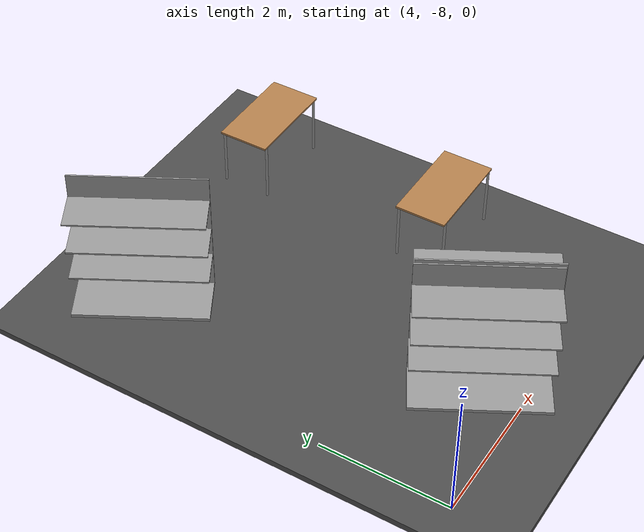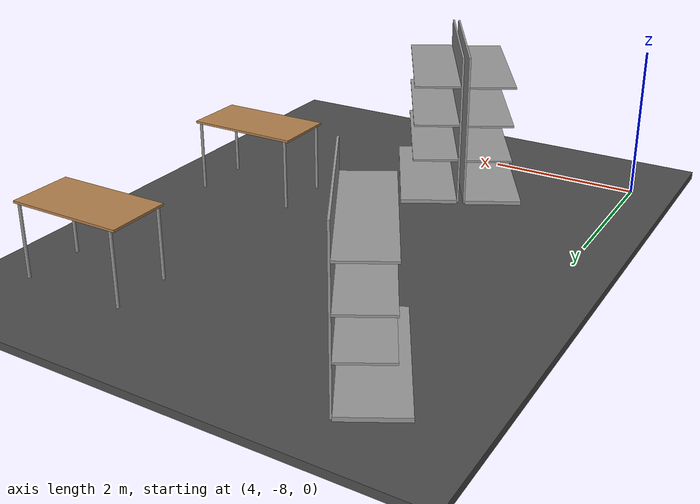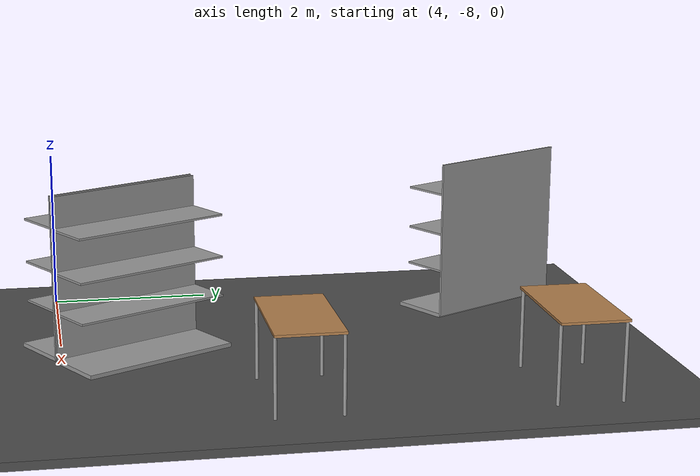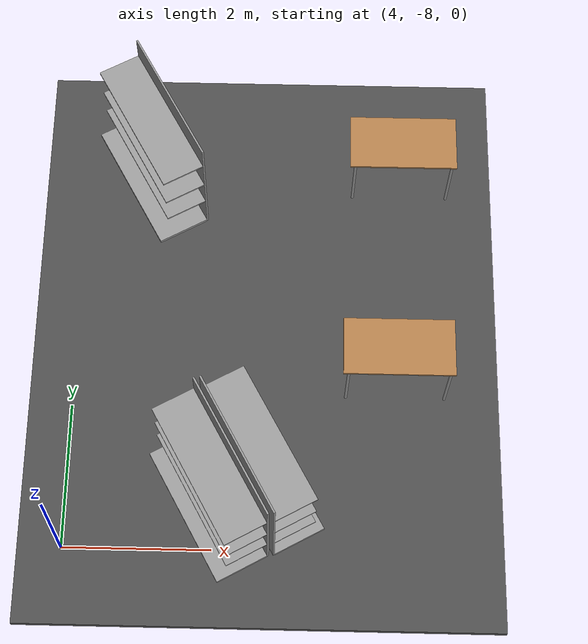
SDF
<sdf version="1.6">
 <world name="default">
  <model name="ground_plane">
   <static>1</static>
   <link name="link">
    <collision name="collision">
     <geometry><plane><normal>0 0 1</normal><size>100 100</size></plane></geometry>
     <surface>
      <contact><collide_bitmask>65535</collide_bitmask></contact>
      <friction><ode><mu>100</mu><mu2>50</mu2></ode></friction>
     </surface>
    </collision>
    <visual name="visual">
     <cast_shadows>0</cast_shadows>
     <geometry><plane><normal>0 0 1</normal><size>100 100</size></plane></geometry>
     <material>
      <script><uri>file://media/materials/scripts/gazebo.material</uri><name>Gazebo/Grey</name></script>
     </material>
    </visual>
   </link>
  </model>
  <model name="asphalt_plane">
   <static>1</static>
   <link name="link">
    <collision name="collision"><geometry><box><size>20 23.3157 0.1</size></box></geometry></collision>
    <visual name="visual">
     <cast_shadows>0</cast_shadows>
     <geometry><box><size>20 23.3157 0.1</size></box></geometry>
     <material>
      <script>
       <uri>model://asphalt_plane/materials/scripts</uri>
       <uri>model://asphalt_plane/materials/textures</uri>
       <name>vrc/asphalt</name>
      </script>
     </material>
    </visual>
   </link>
   <pose>0.082168 -0.989597 0 0 -0 0</pose>
  </model>
  <model name="LongShelf_1_clone_clone_0">
   <link name="link_0">
    <inertial>
     <mass>0.38468</mass>
     <inertia>
      <ixx>0.0321196</ixx>
      <ixy>0</ixy>
      <ixz>0</ixz>
      <iyy>2.41752</iyy>
      <iyz>0</iyz>
      <izz>2.44951</izz>
     </inertia>
    </inertial>
    <pose>0.01298 0.384233 -0.994649 0 -0 0</pose>
    <visual name="visual">
     <geometry><box><size>2 0.75 0.05</size></box></geometry>
     <material>
      <lighting>1</lighting>
      <script><uri>file://media/materials/scripts/gazebo.material</uri><name>Gazebo/Grey</name></script>
      <shader type="vertex"><normal_map>__default__</normal_map></shader>
      <ambient>0.3 0.3 0.3 1</ambient>
      <diffuse>0.7 0.7 0.7 1</diffuse>
      <specular>0.01 0.01 0.01 1</specular>
      <emissive>0 0 0 1</emissive>
     </material>
    </visual>
    <collision name="collision">
     <geometry><box><size>2 0.75 0.05</size></box></geometry>
     <surface>
      <friction>
       <ode><mu>1</mu><mu2>1</mu2><fdir1>0 0 0</fdir1><slip1>0</slip1><slip2>0</slip2></ode>
       <torsional>
        <coefficient>1</coefficient>
        <patch_radius>0</patch_radius>
        <surface_radius>0</surface_radius>
        <use_patch_radius>1</use_patch_radius>
        <ode><slip>0</slip></ode>
       </torsional>
      </friction>
      <bounce><restitution_coefficient>0</restitution_coefficient><threshold>1e+06</threshold></bounce>
      <contact>
       <collide_without_contact>0</collide_without_contact>
       <collide_without_contact_bitmask>1</collide_without_contact_bitmask>
       <collide_bitmask>1</collide_bitmask>
       <ode>
        <soft_cfm>0</soft_cfm>
        <soft_erp>0.2</soft_erp>
        <kp>1e+13</kp>
        <kd>1</kd>
        <max_vel>0.01</max_vel>
        <min_depth>0</min_depth>
       </ode>
       <bullet>
        <split_impulse>1</split_impulse>
        <split_impulse_penetration_threshold>-0.01</split_impulse_penetration_threshold>
        <soft_cfm>0</soft_cfm>
        <soft_erp>0.2</soft_erp>
        <kp>1e+13</kp>
        <kd>1</kd>
       </bullet>
      </contact>
     </surface>
    </collision>
   </link>
   <link name="link_1">
    <inertial>
     <mass>0.748605</mass>
     <inertia><ixx>0.445095</ixx><ixy>0</ixy><ixz>0</ixz><iyy>5.12268</iyy><iyz>0</iyz><izz>4.67771</izz></inertia>
    </inertial>
    <pose>0.009966 -0.000866 0 0 -0 0</pose>
    <visual name="visual">
     <geometry><box><size>2 0.025 2</size></box></geometry>
     <material>
      <lighting>1</lighting>
      <script><uri>file://media/materials/scripts/gazebo.material</uri><name>Gazebo/Grey</name></script>
      <shader type="vertex"><normal_map>__default__</normal_map></shader>
      <ambient>0.3 0.3 0.3 1</ambient>
      <diffuse>0.7 0.7 0.7 1</diffuse>
      <specular>0.01 0.01 0.01 1</specular>
      <emissive>0 0 0 1</emissive>
     </material>
    </visual>
    <collision name="collision">
     <geometry><box><size>2 0.025 2</size></box></geometry>
     <surface>
      <friction>
       <ode><mu>1</mu><mu2>1</mu2><fdir1>0 0 0</fdir1><slip1>0</slip1><slip2>0</slip2></ode>
       <torsional>
        <coefficient>1</coefficient>
        <patch_radius>0</patch_radius>
        <surface_radius>0</surface_radius>
        <use_patch_radius>1</use_patch_radius>
        <ode><slip>0</slip></ode>
       </torsional>
      </friction>
      <bounce><restitution_coefficient>0</restitution_coefficient><threshold>1e+06</threshold></bounce>
      <contact>
       <collide_without_contact>0</collide_without_contact>
       <collide_without_contact_bitmask>1</collide_without_contact_bitmask>
       <collide_bitmask>1</collide_bitmask>
       <ode>
        <soft_cfm>0</soft_cfm>
        <soft_erp>0.2</soft_erp>
        <kp>1e+13</kp>
        <kd>1</kd>
        <max_vel>0.01</max_vel>
        <min_depth>0</min_depth>
       </ode>
       <bullet>
        <split_impulse>1</split_impulse>
        <split_impulse_penetration_threshold>-0.01</split_impulse_penetration_threshold>
        <soft_cfm>0</soft_cfm>
        <soft_erp>0.2</soft_erp>
        <kp>1e+13</kp>
        <kd>1</kd>
       </bullet>
      </contact>
     </surface>
    </collision>
   </link>
   <link name="link_2">
    <inertial>
     <mass>0.0597214</mass>
     <inertia>
      <ixx>0.00742007</ixx>
      <ixy>0</ixy>
      <ixz>0</ixz>
      <iyy>0.00498871</iyy>
      <iyz>0</iyz>
      <izz>0.0123849</izz>
     </inertia>
    </inertial>
    <pose>0.010881 0.305507 0.086252 0 -0 0</pose>
    <visual name="visual">
     <geometry><box><size>2 0.6 0.025</size></box></geometry>
     <material>
      <lighting>1</lighting>
      <script><uri>file://media/materials/scripts/gazebo.material</uri><name>Gazebo/Grey</name></script>
      <shader type="vertex"><normal_map>__default__</normal_map></shader>
      <ambient>0.3 0.3 0.3 1</ambient>
      <diffuse>0.7 0.7 0.7 1</diffuse>
      <specular>0.01 0.01 0.01 1</specular>
      <emissive>0 0 0 1</emissive>
     </material>
    </visual>
    <collision name="collision">
     <geometry><box><size>2 0.600001 0.025</size></box></geometry>
     <surface>
      <friction>
       <ode><mu>1</mu><mu2>1</mu2><fdir1>0 0 0</fdir1><slip1>0</slip1><slip2>0</slip2></ode>
       <torsional>
        <coefficient>1</coefficient>
        <patch_radius>0</patch_radius>
        <surface_radius>0</surface_radius>
        <use_patch_radius>1</use_patch_radius>
        <ode><slip>0</slip></ode>
       </torsional>
      </friction>
      <bounce><restitution_coefficient>0</restitution_coefficient><threshold>1e+06</threshold></bounce>
      <contact>
       <collide_without_contact>0</collide_without_contact>
       <collide_without_contact_bitmask>1</collide_without_contact_bitmask>
       <collide_bitmask>1</collide_bitmask>
       <ode>
        <soft_cfm>0</soft_cfm>
        <soft_erp>0.2</soft_erp>
        <kp>1e+13</kp>
        <kd>1</kd>
        <max_vel>0.01</max_vel>
        <min_depth>0</min_depth>
       </ode>
       <bullet>
        <split_impulse>1</split_impulse>
        <split_impulse_penetration_threshold>-0.01</split_impulse_penetration_threshold>
        <soft_cfm>0</soft_cfm>
        <soft_erp>0.2</soft_erp>
        <kp>1e+13</kp>
        <kd>1</kd>
       </bullet>
      </contact>
     </surface>
    </collision>
   </link>
   <link name="link_2_clone">
    <inertial>
     <mass>0.0597214</mass>
     <inertia>
      <ixx>0.00742007</ixx>
      <ixy>0</ixy>
      <ixz>0</ixz>
      <iyy>0.00498871</iyy>
      <iyz>0</iyz>
      <izz>0.0123849</izz>
     </inertia>
    </inertial>
    <pose>0.012798 0.30891 0.609885 0 -0 0</pose>
    <visual name="visual">
     <geometry><box><size>2 0.6 0.025</size></box></geometry>
     <material>
      <lighting>1</lighting>
      <script><uri>file://media/materials/scripts/gazebo.material</uri><name>Gazebo/Grey</name></script>
      <shader type="vertex"><normal_map>__default__</normal_map></shader>
      <ambient>0.3 0.3 0.3 1</ambient>
      <diffuse>0.7 0.7 0.7 1</diffuse>
      <specular>0.01 0.01 0.01 1</specular>
      <emissive>0 0 0 1</emissive>
     </material>
    </visual>
    <collision name="collision">
     <geometry><box><size>2 0.600001 0.025</size></box></geometry>
     <surface>
      <friction>
       <ode><mu>1</mu><mu2>1</mu2><fdir1>0 0 0</fdir1><slip1>0</slip1><slip2>0</slip2></ode>
       <torsional>
        <coefficient>1</coefficient>
        <patch_radius>0</patch_radius>
        <surface_radius>0</surface_radius>
        <use_patch_radius>1</use_patch_radius>
        <ode><slip>0</slip></ode>
       </torsional>
      </friction>
      <bounce><restitution_coefficient>0</restitution_coefficient><threshold>1e+06</threshold></bounce>
      <contact>
       <collide_without_contact>0</collide_without_contact>
       <collide_without_contact_bitmask>1</collide_without_contact_bitmask>
       <collide_bitmask>1</collide_bitmask>
       <ode>
        <soft_cfm>0</soft_cfm>
        <soft_erp>0.2</soft_erp>
        <kp>1e+13</kp>
        <kd>1</kd>
        <max_vel>0.01</max_vel>
        <min_depth>0</min_depth>
       </ode>
       <bullet>
        <split_impulse>1</split_impulse>
        <split_impulse_penetration_threshold>-0.01</split_impulse_penetration_threshold>
        <soft_cfm>0</soft_cfm>
        <soft_erp>0.2</soft_erp>
        <kp>1e+13</kp>
        <kd>1</kd>
       </bullet>
      </contact>
     </surface>
    </collision>
   </link>
   <link name="link_2_clone_0">
    <inertial>
     <mass>0.0597214</mass>
     <inertia>
      <ixx>0.00742007</ixx>
      <ixy>0</ixy>
      <ixz>0</ixz>
      <iyy>0.00498871</iyy>
      <iyz>0</iyz>
      <izz>0.0123849</izz>
     </inertia>
    </inertial>
    <pose>0.012613 0.308582 -0.399561 0 -0 0</pose>
    <visual name="visual">
     <geometry><box><size>2 0.6 0.025</size></box></geometry>
     <material>
      <lighting>1</lighting>
      <script><uri>file://media/materials/scripts/gazebo.material</uri><name>Gazebo/Grey</name></script>
      <shader type="vertex"><normal_map>__default__</normal_map></shader>
      <ambient>0.3 0.3 0.3 1</ambient>
      <diffuse>0.7 0.7 0.7 1</diffuse>
      <specular>0.01 0.01 0.01 1</specular>
      <emissive>0 0 0 1</emissive>
     </material>
    </visual>
    <collision name="collision">
     <geometry><box><size>2 0.600001 0.025</size></box></geometry>
     <surface>
      <friction>
       <ode><mu>1</mu><mu2>1</mu2><fdir1>0 0 0</fdir1><slip1>0</slip1><slip2>0</slip2></ode>
       <torsional>
        <coefficient>1</coefficient>
        <patch_radius>0</patch_radius>
        <surface_radius>0</surface_radius>
        <use_patch_radius>1</use_patch_radius>
        <ode><slip>0</slip></ode>
       </torsional>
      </friction>
      <bounce><restitution_coefficient>0</restitution_coefficient><threshold>1e+06</threshold></bounce>
      <contact>
       <collide_without_contact>0</collide_without_contact>
       <collide_without_contact_bitmask>1</collide_without_contact_bitmask>
       <collide_bitmask>1</collide_bitmask>
       <ode>
        <soft_cfm>0</soft_cfm>
        <soft_erp>0.2</soft_erp>
        <kp>1e+13</kp>
        <kd>1</kd>
        <max_vel>0.01</max_vel>
        <min_depth>0</min_depth>
       </ode>
       <bullet>
        <split_impulse>1</split_impulse>
        <split_impulse_penetration_threshold>-0.01</split_impulse_penetration_threshold>
        <soft_cfm>0</soft_cfm>
        <soft_erp>0.2</soft_erp>
        <kp>1e+13</kp>
        <kd>1</kd>
       </bullet>
      </contact>
     </surface>
    </collision>
   </link>
   <joint name="link_1_JOINT_0" type="fixed">
    <parent>link_1</parent>
    <child>link_0</child>
    <physics>
     <ode><limit><cfm>0</cfm><erp>0.2</erp></limit><suspension><cfm>0</cfm><erp>0.2</erp></suspension></ode>
    </physics>
   </joint>
   <joint name="link_1_JOINT_1" type="fixed">
    <parent>link_1</parent>
    <child>link_2_clone_0</child>
    <physics>
     <ode><limit><cfm>0</cfm><erp>0.2</erp></limit><suspension><cfm>0</cfm><erp>0.2</erp></suspension></ode>
    </physics>
   </joint>
   <joint name="link_1_JOINT_2" type="revolute">
    <parent>link_1</parent>
    <child>link_2</child>
    <axis>
     <xyz>1 0 0</xyz>
     <use_parent_model_frame>0</use_parent_model_frame>
     <limit>
      <lower>-1.79769e+308</lower>
      <upper>1.79769e+308</upper>
      <effort>-1</effort>
      <velocity>-1</velocity>
     </limit>
     <dynamics>
      <spring_reference>0</spring_reference>
      <spring_stiffness>0</spring_stiffness>
      <damping>0</damping>
      <friction>0</friction>
     </dynamics>
    </axis>
    <physics>
     <ode><limit><cfm>0</cfm><erp>0.2</erp></limit><suspension><cfm>0</cfm><erp>0.2</erp></suspension></ode>
    </physics>
   </joint>
   <joint name="link_1_JOINT_3" type="fixed">
    <parent>link_1</parent>
    <child>link_2_clone</child>
    <physics>
     <ode><limit><cfm>0</cfm><erp>0.2</erp></limit><suspension><cfm>0</cfm><erp>0.2</erp></suspension></ode>
    </physics>
   </joint>
   <static>0</static>
   <pose>6.34705 -7.17691 1.06965 -1e-06 -0 -1.06544</pose>
  </model>
  <model name="LongShelf_1_clone_1">
   <link name="link_0">
    <inertial>
     <mass>0.38468</mass>
     <inertia>
      <ixx>0.0321196</ixx>
      <ixy>0</ixy>
      <ixz>0</ixz>
      <iyy>2.41752</iyy>
      <iyz>0</iyz>
      <izz>2.44951</izz>
     </inertia>
    </inertial>
    <pose>0.01298 0.384233 -0.994649 0 -0 0</pose>
    <visual name="visual">
     <geometry><box><size>2 0.75 0.05</size></box></geometry>
     <material>
      <lighting>1</lighting>
      <script><uri>file://media/materials/scripts/gazebo.material</uri><name>Gazebo/Grey</name></script>
      <shader type="vertex"><normal_map>__default__</normal_map></shader>
      <ambient>0.3 0.3 0.3 1</ambient>
      <diffuse>0.7 0.7 0.7 1</diffuse>
      <specular>0.01 0.01 0.01 1</specular>
      <emissive>0 0 0 1</emissive>
     </material>
    </visual>
    <collision name="collision">
     <geometry><box><size>2 0.75 0.05</size></box></geometry>
     <surface>
      <friction>
       <ode><mu>1</mu><mu2>1</mu2><fdir1>0 0 0</fdir1><slip1>0</slip1><slip2>0</slip2></ode>
       <torsional>
        <coefficient>1</coefficient>
        <patch_radius>0</patch_radius>
        <surface_radius>0</surface_radius>
        <use_patch_radius>1</use_patch_radius>
        <ode><slip>0</slip></ode>
       </torsional>
      </friction>
      <bounce><restitution_coefficient>0</restitution_coefficient><threshold>1e+06</threshold></bounce>
      <contact>
       <collide_without_contact>0</collide_without_contact>
       <collide_without_contact_bitmask>1</collide_without_contact_bitmask>
       <collide_bitmask>1</collide_bitmask>
       <ode>
        <soft_cfm>0</soft_cfm>
        <soft_erp>0.2</soft_erp>
        <kp>1e+13</kp>
        <kd>1</kd>
        <max_vel>0.01</max_vel>
        <min_depth>0</min_depth>
       </ode>
       <bullet>
        <split_impulse>1</split_impulse>
        <split_impulse_penetration_threshold>-0.01</split_impulse_penetration_threshold>
        <soft_cfm>0</soft_cfm>
        <soft_erp>0.2</soft_erp>
        <kp>1e+13</kp>
        <kd>1</kd>
       </bullet>
      </contact>
     </surface>
    </collision>
   </link>
   <link name="link_1">
    <inertial>
     <mass>0.748605</mass>
     <inertia><ixx>0.445095</ixx><ixy>0</ixy><ixz>0</ixz><iyy>5.12268</iyy><iyz>0</iyz><izz>4.67771</izz></inertia>
    </inertial>
    <pose>0.009966 -0.000866 0 0 -0 0</pose>
    <visual name="visual">
     <geometry><box><size>2 0.025 2</size></box></geometry>
     <material>
      <lighting>1</lighting>
      <script><uri>file://media/materials/scripts/gazebo.material</uri><name>Gazebo/Grey</name></script>
      <shader type="vertex"><normal_map>__default__</normal_map></shader>
      <ambient>0.3 0.3 0.3 1</ambient>
      <diffuse>0.7 0.7 0.7 1</diffuse>
      <specular>0.01 0.01 0.01 1</specular>
      <emissive>0 0 0 1</emissive>
     </material>
    </visual>
    <collision name="collision">
     <geometry><box><size>2 0.025 2</size></box></geometry>
     <surface>
      <friction>
       <ode><mu>1</mu><mu2>1</mu2><fdir1>0 0 0</fdir1><slip1>0</slip1><slip2>0</slip2></ode>
       <torsional>
        <coefficient>1</coefficient>
        <patch_radius>0</patch_radius>
        <surface_radius>0</surface_radius>
        <use_patch_radius>1</use_patch_radius>
        <ode><slip>0</slip></ode>
       </torsional>
      </friction>
      <bounce><restitution_coefficient>0</restitution_coefficient><threshold>1e+06</threshold></bounce>
      <contact>
       <collide_without_contact>0</collide_without_contact>
       <collide_without_contact_bitmask>1</collide_without_contact_bitmask>
       <collide_bitmask>1</collide_bitmask>
       <ode>
        <soft_cfm>0</soft_cfm>
        <soft_erp>0.2</soft_erp>
        <kp>1e+13</kp>
        <kd>1</kd>
        <max_vel>0.01</max_vel>
        <min_depth>0</min_depth>
       </ode>
       <bullet>
        <split_impulse>1</split_impulse>
        <split_impulse_penetration_threshold>-0.01</split_impulse_penetration_threshold>
        <soft_cfm>0</soft_cfm>
        <soft_erp>0.2</soft_erp>
        <kp>1e+13</kp>
        <kd>1</kd>
       </bullet>
      </contact>
     </surface>
    </collision>
   </link>
   <link name="link_2">
    <inertial>
     <mass>0.0597214</mass>
     <inertia>
      <ixx>0.00742007</ixx>
      <ixy>0</ixy>
      <ixz>0</ixz>
      <iyy>0.00498871</iyy>
      <iyz>0</iyz>
      <izz>0.0123849</izz>
     </inertia>
    </inertial>
    <pose>0.010881 0.305507 0.086252 0 -0 0</pose>
    <visual name="visual">
     <geometry><box><size>2 0.6 0.025</size></box></geometry>
     <material>
      <lighting>1</lighting>
      <script><uri>file://media/materials/scripts/gazebo.material</uri><name>Gazebo/Grey</name></script>
      <shader type="vertex"><normal_map>__default__</normal_map></shader>
      <ambient>0.3 0.3 0.3 1</ambient>
      <diffuse>0.7 0.7 0.7 1</diffuse>
      <specular>0.01 0.01 0.01 1</specular>
      <emissive>0 0 0 1</emissive>
     </material>
    </visual>
    <collision name="collision">
     <geometry><box><size>2 0.600001 0.025</size></box></geometry>
     <surface>
      <friction>
       <ode><mu>1</mu><mu2>1</mu2><fdir1>0 0 0</fdir1><slip1>0</slip1><slip2>0</slip2></ode>
       <torsional>
        <coefficient>1</coefficient>
        <patch_radius>0</patch_radius>
        <surface_radius>0</surface_radius>
        <use_patch_radius>1</use_patch_radius>
        <ode><slip>0</slip></ode>
       </torsional>
      </friction>
      <bounce><restitution_coefficient>0</restitution_coefficient><threshold>1e+06</threshold></bounce>
      <contact>
       <collide_without_contact>0</collide_without_contact>
       <collide_without_contact_bitmask>1</collide_without_contact_bitmask>
       <collide_bitmask>1</collide_bitmask>
       <ode>
        <soft_cfm>0</soft_cfm>
        <soft_erp>0.2</soft_erp>
        <kp>1e+13</kp>
        <kd>1</kd>
        <max_vel>0.01</max_vel>
        <min_depth>0</min_depth>
       </ode>
       <bullet>
        <split_impulse>1</split_impulse>
        <split_impulse_penetration_threshold>-0.01</split_impulse_penetration_threshold>
        <soft_cfm>0</soft_cfm>
        <soft_erp>0.2</soft_erp>
        <kp>1e+13</kp>
        <kd>1</kd>
       </bullet>
      </contact>
     </surface>
    </collision>
   </link>
   <link name="link_2_clone">
    <inertial>
     <mass>0.0597214</mass>
     <inertia>
      <ixx>0.00742007</ixx>
      <ixy>0</ixy>
      <ixz>0</ixz>
      <iyy>0.00498871</iyy>
      <iyz>0</iyz>
      <izz>0.0123849</izz>
     </inertia>
    </inertial>
    <pose>0.012798 0.30891 0.609885 0 -0 0</pose>
    <visual name="visual">
     <geometry><box><size>2 0.6 0.025</size></box></geometry>
     <material>
      <lighting>1</lighting>
      <script><uri>file://media/materials/scripts/gazebo.material</uri><name>Gazebo/Grey</name></script>
      <shader type="vertex"><normal_map>__default__</normal_map></shader>
      <ambient>0.3 0.3 0.3 1</ambient>
      <diffuse>0.7 0.7 0.7 1</diffuse>
      <specular>0.01 0.01 0.01 1</specular>
      <emissive>0 0 0 1</emissive>
     </material>
    </visual>
    <collision name="collision">
     <geometry><box><size>2 0.600001 0.025</size></box></geometry>
     <surface>
      <friction>
       <ode><mu>1</mu><mu2>1</mu2><fdir1>0 0 0</fdir1><slip1>0</slip1><slip2>0</slip2></ode>
       <torsional>
        <coefficient>1</coefficient>
        <patch_radius>0</patch_radius>
        <surface_radius>0</surface_radius>
        <use_patch_radius>1</use_patch_radius>
        <ode><slip>0</slip></ode>
       </torsional>
      </friction>
      <bounce><restitution_coefficient>0</restitution_coefficient><threshold>1e+06</threshold></bounce>
      <contact>
       <collide_without_contact>0</collide_without_contact>
       <collide_without_contact_bitmask>1</collide_without_contact_bitmask>
       <collide_bitmask>1</collide_bitmask>
       <ode>
        <soft_cfm>0</soft_cfm>
        <soft_erp>0.2</soft_erp>
        <kp>1e+13</kp>
        <kd>1</kd>
        <max_vel>0.01</max_vel>
        <min_depth>0</min_depth>
       </ode>
       <bullet>
        <split_impulse>1</split_impulse>
        <split_impulse_penetration_threshold>-0.01</split_impulse_penetration_threshold>
        <soft_cfm>0</soft_cfm>
        <soft_erp>0.2</soft_erp>
        <kp>1e+13</kp>
        <kd>1</kd>
       </bullet>
      </contact>
     </surface>
    </collision>
   </link>
   <link name="link_2_clone_0">
    <inertial>
     <mass>0.0597214</mass>
     <inertia>
      <ixx>0.00742007</ixx>
      <ixy>0</ixy>
      <ixz>0</ixz>
      <iyy>0.00498871</iyy>
      <iyz>0</iyz>
      <izz>0.0123849</izz>
     </inertia>
    </inertial>
    <pose>0.012613 0.308582 -0.399561 0 -0 0</pose>
    <visual name="visual">
     <geometry><box><size>2 0.6 0.025</size></box></geometry>
     <material>
      <lighting>1</lighting>
      <script><uri>file://media/materials/scripts/gazebo.material</uri><name>Gazebo/Grey</name></script>
      <shader type="vertex"><normal_map>__default__</normal_map></shader>
      <ambient>0.3 0.3 0.3 1</ambient>
      <diffuse>0.7 0.7 0.7 1</diffuse>
      <specular>0.01 0.01 0.01 1</specular>
      <emissive>0 0 0 1</emissive>
     </material>
    </visual>
    <collision name="collision">
     <geometry><box><size>2 0.600001 0.025</size></box></geometry>
     <surface>
      <friction>
       <ode><mu>1</mu><mu2>1</mu2><fdir1>0 0 0</fdir1><slip1>0</slip1><slip2>0</slip2></ode>
       <torsional>
        <coefficient>1</coefficient>
        <patch_radius>0</patch_radius>
        <surface_radius>0</surface_radius>
        <use_patch_radius>1</use_patch_radius>
        <ode><slip>0</slip></ode>
       </torsional>
      </friction>
      <bounce><restitution_coefficient>0</restitution_coefficient><threshold>1e+06</threshold></bounce>
      <contact>
       <collide_without_contact>0</collide_without_contact>
       <collide_without_contact_bitmask>1</collide_without_contact_bitmask>
       <collide_bitmask>1</collide_bitmask>
       <ode>
        <soft_cfm>0</soft_cfm>
        <soft_erp>0.2</soft_erp>
        <kp>1e+13</kp>
        <kd>1</kd>
        <max_vel>0.01</max_vel>
        <min_depth>0</min_depth>
       </ode>
       <bullet>
        <split_impulse>1</split_impulse>
        <split_impulse_penetration_threshold>-0.01</split_impulse_penetration_threshold>
        <soft_cfm>0</soft_cfm>
        <soft_erp>0.2</soft_erp>
        <kp>1e+13</kp>
        <kd>1</kd>
       </bullet>
      </contact>
     </surface>
    </collision>
   </link>
   <joint name="link_1_JOINT_0" type="fixed">
    <parent>link_1</parent>
    <child>link_0</child>
    <physics>
     <ode><limit><cfm>0</cfm><erp>0.2</erp></limit><suspension><cfm>0</cfm><erp>0.2</erp></suspension></ode>
    </physics>
   </joint>
   <joint name="link_1_JOINT_1" type="fixed">
    <parent>link_1</parent>
    <child>link_2_clone_0</child>
    <physics>
     <ode><limit><cfm>0</cfm><erp>0.2</erp></limit><suspension><cfm>0</cfm><erp>0.2</erp></suspension></ode>
    </physics>
   </joint>
   <joint name="link_1_JOINT_2" type="revolute">
    <parent>link_1</parent>
    <child>link_2</child>
    <axis>
     <xyz>1 0 0</xyz>
     <use_parent_model_frame>0</use_parent_model_frame>
     <limit>
      <lower>-1.79769e+308</lower>
      <upper>1.79769e+308</upper>
      <effort>-1</effort>
      <velocity>-1</velocity>
     </limit>
     <dynamics>
      <spring_reference>0</spring_reference>
      <spring_stiffness>0</spring_stiffness>
      <damping>0</damping>
      <friction>0</friction>
     </dynamics>
    </axis>
    <physics>
     <ode><limit><cfm>0</cfm><erp>0.2</erp></limit><suspension><cfm>0</cfm><erp>0.2</erp></suspension></ode>
    </physics>
   </joint>
   <joint name="link_1_JOINT_3" type="fixed">
    <parent>link_1</parent>
    <child>link_2_clone</child>
    <physics>
     <ode><limit><cfm>0</cfm><erp>0.2</erp></limit><suspension><cfm>0</cfm><erp>0.2</erp></suspension></ode>
    </physics>
   </joint>
   <static>0</static>
   <pose>5.29615 -2.25361 1.06965 -3e-06 -0 2.08017</pose>
  </model>
  <model name="LongShelf_1_clone_3">
   <link name="link_0">
    <inertial>
     <mass>0.38468</mass>
     <inertia>
      <ixx>0.0321196</ixx>
      <ixy>0</ixy>
      <ixz>0</ixz>
      <iyy>2.41752</iyy>
      <iyz>0</iyz>
      <izz>2.44951</izz>
     </inertia>
    </inertial>
    <pose>0.01298 0.384233 -0.994649 0 -0 0</pose>
    <visual name="visual">
     <geometry><box><size>2 0.75 0.05</size></box></geometry>
     <material>
      <lighting>1</lighting>
      <script><uri>file://media/materials/scripts/gazebo.material</uri><name>Gazebo/Grey</name></script>
      <shader type="vertex"><normal_map>__default__</normal_map></shader>
      <ambient>0.3 0.3 0.3 1</ambient>
      <diffuse>0.7 0.7 0.7 1</diffuse>
      <specular>0.01 0.01 0.01 1</specular>
      <emissive>0 0 0 1</emissive>
     </material>
    </visual>
    <collision name="collision">
     <geometry><box><size>2 0.75 0.05</size></box></geometry>
     <surface>
      <friction>
       <ode><mu>1</mu><mu2>1</mu2><fdir1>0 0 0</fdir1><slip1>0</slip1><slip2>0</slip2></ode>
       <torsional>
        <coefficient>1</coefficient>
        <patch_radius>0</patch_radius>
        <surface_radius>0</surface_radius>
        <use_patch_radius>1</use_patch_radius>
        <ode><slip>0</slip></ode>
       </torsional>
      </friction>
      <bounce><restitution_coefficient>0</restitution_coefficient><threshold>1e+06</threshold></bounce>
      <contact>
       <collide_without_contact>0</collide_without_contact>
       <collide_without_contact_bitmask>1</collide_without_contact_bitmask>
       <collide_bitmask>1</collide_bitmask>
       <ode>
        <soft_cfm>0</soft_cfm>
        <soft_erp>0.2</soft_erp>
        <kp>1e+13</kp>
        <kd>1</kd>
        <max_vel>0.01</max_vel>
        <min_depth>0</min_depth>
       </ode>
       <bullet>
        <split_impulse>1</split_impulse>
        <split_impulse_penetration_threshold>-0.01</split_impulse_penetration_threshold>
        <soft_cfm>0</soft_cfm>
        <soft_erp>0.2</soft_erp>
        <kp>1e+13</kp>
        <kd>1</kd>
       </bullet>
      </contact>
     </surface>
    </collision>
   </link>
   <link name="link_1">
    <inertial>
     <mass>0.748605</mass>
     <inertia><ixx>0.445095</ixx><ixy>0</ixy><ixz>0</ixz><iyy>5.12268</iyy><iyz>0</iyz><izz>4.67771</izz></inertia>
    </inertial>
    <pose>0.009966 -0.000866 0 0 -0 0</pose>
    <visual name="visual">
     <geometry><box><size>2 0.025 2</size></box></geometry>
     <material>
      <lighting>1</lighting>
      <script><uri>file://media/materials/scripts/gazebo.material</uri><name>Gazebo/Grey</name></script>
      <shader type="vertex"><normal_map>__default__</normal_map></shader>
      <ambient>0.3 0.3 0.3 1</ambient>
      <diffuse>0.7 0.7 0.7 1</diffuse>
      <specular>0.01 0.01 0.01 1</specular>
      <emissive>0 0 0 1</emissive>
     </material>
    </visual>
    <collision name="collision">
     <geometry><box><size>2 0.025 2</size></box></geometry>
     <surface>
      <friction>
       <ode><mu>1</mu><mu2>1</mu2><fdir1>0 0 0</fdir1><slip1>0</slip1><slip2>0</slip2></ode>
       <torsional>
        <coefficient>1</coefficient>
        <patch_radius>0</patch_radius>
        <surface_radius>0</surface_radius>
        <use_patch_radius>1</use_patch_radius>
        <ode><slip>0</slip></ode>
       </torsional>
      </friction>
      <bounce><restitution_coefficient>0</restitution_coefficient><threshold>1e+06</threshold></bounce>
      <contact>
       <collide_without_contact>0</collide_without_contact>
       <collide_without_contact_bitmask>1</collide_without_contact_bitmask>
       <collide_bitmask>1</collide_bitmask>
       <ode>
        <soft_cfm>0</soft_cfm>
        <soft_erp>0.2</soft_erp>
        <kp>1e+13</kp>
        <kd>1</kd>
        <max_vel>0.01</max_vel>
        <min_depth>0</min_depth>
       </ode>
       <bullet>
        <split_impulse>1</split_impulse>
        <split_impulse_penetration_threshold>-0.01</split_impulse_penetration_threshold>
        <soft_cfm>0</soft_cfm>
        <soft_erp>0.2</soft_erp>
        <kp>1e+13</kp>
        <kd>1</kd>
       </bullet>
      </contact>
     </surface>
    </collision>
   </link>
   <link name="link_2">
    <inertial>
     <mass>0.0597214</mass>
     <inertia>
      <ixx>0.00742007</ixx>
      <ixy>0</ixy>
      <ixz>0</ixz>
      <iyy>0.00498871</iyy>
      <iyz>0</iyz>
      <izz>0.0123849</izz>
     </inertia>
    </inertial>
    <pose>0.010881 0.305507 0.086252 0 -0 0</pose>
    <visual name="visual">
     <geometry><box><size>2 0.6 0.025</size></box></geometry>
     <material>
      <lighting>1</lighting>
      <script><uri>file://media/materials/scripts/gazebo.material</uri><name>Gazebo/Grey</name></script>
      <shader type="vertex"><normal_map>__default__</normal_map></shader>
      <ambient>0.3 0.3 0.3 1</ambient>
      <diffuse>0.7 0.7 0.7 1</diffuse>
      <specular>0.01 0.01 0.01 1</specular>
      <emissive>0 0 0 1</emissive>
     </material>
    </visual>
    <collision name="collision">
     <geometry><box><size>2 0.600001 0.025</size></box></geometry>
     <surface>
      <friction>
       <ode><mu>1</mu><mu2>1</mu2><fdir1>0 0 0</fdir1><slip1>0</slip1><slip2>0</slip2></ode>
       <torsional>
        <coefficient>1</coefficient>
        <patch_radius>0</patch_radius>
        <surface_radius>0</surface_radius>
        <use_patch_radius>1</use_patch_radius>
        <ode><slip>0</slip></ode>
       </torsional>
      </friction>
      <bounce><restitution_coefficient>0</restitution_coefficient><threshold>1e+06</threshold></bounce>
      <contact>
       <collide_without_contact>0</collide_without_contact>
       <collide_without_contact_bitmask>1</collide_without_contact_bitmask>
       <collide_bitmask>1</collide_bitmask>
       <ode>
        <soft_cfm>0</soft_cfm>
        <soft_erp>0.2</soft_erp>
        <kp>1e+13</kp>
        <kd>1</kd>
        <max_vel>0.01</max_vel>
        <min_depth>0</min_depth>
       </ode>
       <bullet>
        <split_impulse>1</split_impulse>
        <split_impulse_penetration_threshold>-0.01</split_impulse_penetration_threshold>
        <soft_cfm>0</soft_cfm>
        <soft_erp>0.2</soft_erp>
        <kp>1e+13</kp>
        <kd>1</kd>
       </bullet>
      </contact>
     </surface>
    </collision>
   </link>
   <link name="link_2_clone">
    <inertial>
     <mass>0.0597214</mass>
     <inertia>
      <ixx>0.00742007</ixx>
      <ixy>0</ixy>
      <ixz>0</ixz>
      <iyy>0.00498871</iyy>
      <iyz>0</iyz>
      <izz>0.0123849</izz>
     </inertia>
    </inertial>
    <pose>0.012798 0.30891 0.609885 0 -0 0</pose>
    <visual name="visual">
     <geometry><box><size>2 0.6 0.025</size></box></geometry>
     <material>
      <lighting>1</lighting>
      <script><uri>file://media/materials/scripts/gazebo.material</uri><name>Gazebo/Grey</name></script>
      <shader type="vertex"><normal_map>__default__</normal_map></shader>
      <ambient>0.3 0.3 0.3 1</ambient>
      <diffuse>0.7 0.7 0.7 1</diffuse>
      <specular>0.01 0.01 0.01 1</specular>
      <emissive>0 0 0 1</emissive>
     </material>
    </visual>
    <collision name="collision">
     <geometry><box><size>2 0.600001 0.025</size></box></geometry>
     <surface>
      <friction>
       <ode><mu>1</mu><mu2>1</mu2><fdir1>0 0 0</fdir1><slip1>0</slip1><slip2>0</slip2></ode>
       <torsional>
        <coefficient>1</coefficient>
        <patch_radius>0</patch_radius>
        <surface_radius>0</surface_radius>
        <use_patch_radius>1</use_patch_radius>
        <ode><slip>0</slip></ode>
       </torsional>
      </friction>
      <bounce><restitution_coefficient>0</restitution_coefficient><threshold>1e+06</threshold></bounce>
      <contact>
       <collide_without_contact>0</collide_without_contact>
       <collide_without_contact_bitmask>1</collide_without_contact_bitmask>
       <collide_bitmask>1</collide_bitmask>
       <ode>
        <soft_cfm>0</soft_cfm>
        <soft_erp>0.2</soft_erp>
        <kp>1e+13</kp>
        <kd>1</kd>
        <max_vel>0.01</max_vel>
        <min_depth>0</min_depth>
       </ode>
       <bullet>
        <split_impulse>1</split_impulse>
        <split_impulse_penetration_threshold>-0.01</split_impulse_penetration_threshold>
        <soft_cfm>0</soft_cfm>
        <soft_erp>0.2</soft_erp>
        <kp>1e+13</kp>
        <kd>1</kd>
       </bullet>
      </contact>
     </surface>
    </collision>
   </link>
   <link name="link_2_clone_0">
    <inertial>
     <mass>0.0597214</mass>
     <inertia>
      <ixx>0.00742007</ixx>
      <ixy>0</ixy>
      <ixz>0</ixz>
      <iyy>0.00498871</iyy>
      <iyz>0</iyz>
      <izz>0.0123849</izz>
     </inertia>
    </inertial>
    <pose>0.012613 0.308582 -0.399561 0 -0 0</pose>
    <visual name="visual">
     <geometry><box><size>2 0.6 0.025</size></box></geometry>
     <material>
      <lighting>1</lighting>
      <script><uri>file://media/materials/scripts/gazebo.material</uri><name>Gazebo/Grey</name></script>
      <shader type="vertex"><normal_map>__default__</normal_map></shader>
      <ambient>0.3 0.3 0.3 1</ambient>
      <diffuse>0.7 0.7 0.7 1</diffuse>
      <specular>0.01 0.01 0.01 1</specular>
      <emissive>0 0 0 1</emissive>
     </material>
    </visual>
    <collision name="collision">
     <geometry><box><size>2 0.600001 0.025</size></box></geometry>
     <surface>
      <friction>
       <ode><mu>1</mu><mu2>1</mu2><fdir1>0 0 0</fdir1><slip1>0</slip1><slip2>0</slip2></ode>
       <torsional>
        <coefficient>1</coefficient>
        <patch_radius>0</patch_radius>
        <surface_radius>0</surface_radius>
        <use_patch_radius>1</use_patch_radius>
        <ode><slip>0</slip></ode>
       </torsional>
      </friction>
      <bounce><restitution_coefficient>0</restitution_coefficient><threshold>1e+06</threshold></bounce>
      <contact>
       <collide_without_contact>0</collide_without_contact>
       <collide_without_contact_bitmask>1</collide_without_contact_bitmask>
       <collide_bitmask>1</collide_bitmask>
       <ode>
        <soft_cfm>0</soft_cfm>
        <soft_erp>0.2</soft_erp>
        <kp>1e+13</kp>
        <kd>1</kd>
        <max_vel>0.01</max_vel>
        <min_depth>0</min_depth>
       </ode>
       <bullet>
        <split_impulse>1</split_impulse>
        <split_impulse_penetration_threshold>-0.01</split_impulse_penetration_threshold>
        <soft_cfm>0</soft_cfm>
        <soft_erp>0.2</soft_erp>
        <kp>1e+13</kp>
        <kd>1</kd>
       </bullet>
      </contact>
     </surface>
    </collision>
   </link>
   <joint name="link_1_JOINT_0" type="fixed">
    <parent>link_1</parent>
    <child>link_0</child>
    <physics>
     <ode><limit><cfm>0</cfm><erp>0.2</erp></limit><suspension><cfm>0</cfm><erp>0.2</erp></suspension></ode>
    </physics>
   </joint>
   <joint name="link_1_JOINT_1" type="fixed">
    <parent>link_1</parent>
    <child>link_2_clone_0</child>
    <physics>
     <ode><limit><cfm>0</cfm><erp>0.2</erp></limit><suspension><cfm>0</cfm><erp>0.2</erp></suspension></ode>
    </physics>
   </joint>
   <joint name="link_1_JOINT_2" type="revolute">
    <parent>link_1</parent>
    <child>link_2</child>
    <axis>
     <xyz>1 0 0</xyz>
     <use_parent_model_frame>0</use_parent_model_frame>
     <limit>
      <lower>-1.79769e+308</lower>
      <upper>1.79769e+308</upper>
      <effort>-1</effort>
      <velocity>-1</velocity>
     </limit>
     <dynamics>
      <spring_reference>0</spring_reference>
      <spring_stiffness>0</spring_stiffness>
      <damping>0</damping>
      <friction>0</friction>
     </dynamics>
    </axis>
    <physics>
     <ode><limit><cfm>0</cfm><erp>0.2</erp></limit><suspension><cfm>0</cfm><erp>0.2</erp></suspension></ode>
    </physics>
   </joint>
   <joint name="link_1_JOINT_3" type="fixed">
    <parent>link_1</parent>
    <child>link_2_clone</child>
    <physics>
     <ode><limit><cfm>0</cfm><erp>0.2</erp></limit><suspension><cfm>0</cfm><erp>0.2</erp></suspension></ode>
    </physics>
   </joint>
   <static>0</static>
   <pose>6.27465 -7.21549 1.06964 7e-06 -0 2.0798</pose>
  </model>
  <model name="table">
   <static>1</static>
   <link name="link">
    <collision name="surface">
     <pose>0 0 1 0 -0 0</pose>
     <geometry><box><size>1.5 0.8 0.03</size></box></geometry>
     <surface><friction><ode><mu>0.6</mu><mu2>0.6</mu2></ode></friction></surface>
    </collision>
    <visual name="visual1">
     <pose>0 0 1 0 -0 0</pose>
     <geometry><box><size>1.5 0.8 0.03</size></box></geometry>
     <material>
      <script><uri>file://media/materials/scripts/gazebo.material</uri><name>Gazebo/Wood</name></script>
     </material>
    </visual>
    <collision name="front_left_leg">
     <pose>0.68 0.38 0.5 0 -0 0</pose>
     <geometry><cylinder><radius>0.02</radius><length>1</length></cylinder></geometry>
    </collision>
    <visual name="front_left_leg">
     <pose>0.68 0.38 0.5 0 -0 0</pose>
     <geometry><cylinder><radius>0.02</radius><length>1</length></cylinder></geometry>
     <material>
      <script><uri>file://media/materials/scripts/gazebo.material</uri><name>Gazebo/Grey</name></script>
     </material>
    </visual>
    <collision name="front_right_leg">
     <pose>0.68 -0.38 0.5 0 -0 0</pose>
     <geometry><cylinder><radius>0.02</radius><length>1</length></cylinder></geometry>
    </collision>
    <visual name="front_right_leg">
     <pose>0.68 -0.38 0.5 0 -0 0</pose>
     <geometry><cylinder><radius>0.02</radius><length>1</length></cylinder></geometry>
     <material>
      <script><uri>file://media/materials/scripts/gazebo.material</uri><name>Gazebo/Grey</name></script>
     </material>
    </visual>
    <collision name="back_right_leg">
     <pose>-0.68 -0.38 0.5 0 -0 0</pose>
     <geometry><cylinder><radius>0.02</radius><length>1</length></cylinder></geometry>
    </collision>
    <visual name="back_right_leg">
     <pose>-0.68 -0.38 0.5 0 -0 0</pose>
     <geometry><cylinder><radius>0.02</radius><length>1</length></cylinder></geometry>
     <material>
      <script><uri>file://media/materials/scripts/gazebo.material</uri><name>Gazebo/Grey</name></script>
     </material>
    </visual>
    <collision name="back_left_leg">
     <pose>-0.68 0.38 0.5 0 -0 0</pose>
     <geometry><cylinder><radius>0.02</radius><length>1</length></cylinder></geometry>
    </collision>
    <visual name="back_left_leg">
     <pose>-0.68 0.38 0.5 0 -0 0</pose>
     <geometry><cylinder><radius>0.02</radius><length>1</length></cylinder></geometry>
     <material>
      <script><uri>file://media/materials/scripts/gazebo.material</uri><name>Gazebo/Grey</name></script>
     </material>
    </visual>
   </link>
   <pose>8.55936 -2.30111 0 0 -0 0</pose>
  </model>
  <model name="table_clone">
   <static>1</static>
   <link name="link">
    <collision name="surface">
     <pose>0 0 1 0 -0 0</pose>
     <geometry><box><size>1.5 0.8 0.03</size></box></geometry>
     <surface><friction><ode><mu>0.6</mu><mu2>0.6</mu2></ode></friction></surface>
    </collision>
    <visual name="visual1">
     <pose>0 0 1 0 -0 0</pose>
     <geometry><box><size>1.5 0.8 0.03</size></box></geometry>
     <material>
      <script><uri>file://media/materials/scripts/gazebo.material</uri><name>Gazebo/Wood</name></script>
     </material>
    </visual>
    <collision name="front_left_leg">
     <pose>0.68 0.38 0.5 0 -0 0</pose>
     <geometry><cylinder><radius>0.02</radius><length>1</length></cylinder></geometry>
    </collision>
    <visual name="front_left_leg">
     <pose>0.68 0.38 0.5 0 -0 0</pose>
     <geometry><cylinder><radius>0.02</radius><length>1</length></cylinder></geometry>
     <material>
      <script><uri>file://media/materials/scripts/gazebo.material</uri><name>Gazebo/Grey</name></script>
     </material>
    </visual>
    <collision name="front_right_leg">
     <pose>0.68 -0.38 0.5 0 -0 0</pose>
     <geometry><cylinder><radius>0.02</radius><length>1</length></cylinder></geometry>
    </collision>
    <visual name="front_right_leg">
     <pose>0.68 -0.38 0.5 0 -0 0</pose>
     <geometry><cylinder><radius>0.02</radius><length>1</length></cylinder></geometry>
     <material>
      <script><uri>file://media/materials/scripts/gazebo.material</uri><name>Gazebo/Grey</name></script>
     </material>
    </visual>
    <collision name="back_right_leg">
     <pose>-0.68 -0.38 0.5 0 -0 0</pose>
     <geometry><cylinder><radius>0.02</radius><length>1</length></cylinder></geometry>
    </collision>
    <visual name="back_right_leg">
     <pose>-0.68 -0.38 0.5 0 -0 0</pose>
     <geometry><cylinder><radius>0.02</radius><length>1</length></cylinder></geometry>
     <material>
      <script><uri>file://media/materials/scripts/gazebo.material</uri><name>Gazebo/Grey</name></script>
     </material>
    </visual>
    <collision name="back_left_leg">
     <pose>-0.68 0.38 0.5 0 -0 0</pose>
     <geometry><cylinder><radius>0.02</radius><length>1</length></cylinder></geometry>
    </collision>
    <visual name="back_left_leg">
     <pose>-0.68 0.38 0.5 0 -0 0</pose>
     <geometry><cylinder><radius>0.02</radius><length>1</length></cylinder></geometry>
     <material>
      <script><uri>file://media/materials/scripts/gazebo.material</uri><name>Gazebo/Grey</name></script>
     </material>
    </visual>
   </link>
   <pose>8.46434 -5.42693 0 0 -0 0</pose>
  </model>
 </world>
</sdf>
